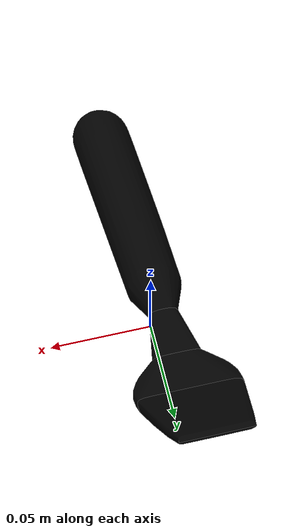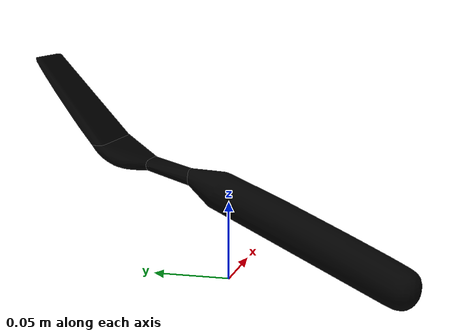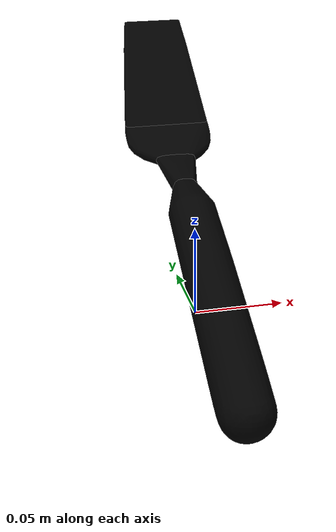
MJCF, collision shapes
<mujoco model="fork_00">
  <asset>
    <mesh name="fork00_visual_mesh" file="fork_textured.obj" scale="0.12 0.12 0.12"/>
    <mesh name="fork00_collision_mesh_0" file="fork_collision_0.obj" scale="0.12 0.12 0.12"/>
    <mesh name="fork00_collision_mesh_1" file="fork_collision_1.obj" scale="0.12 0.12 0.12"/>
    <mesh name="fork00_collision_mesh_2" file="fork_collision_2.obj" scale="0.12 0.12 0.12"/>
    <mesh name="fork00_collision_mesh_3" file="fork_collision_3.obj" scale="0.12 0.12 0.12"/>
    <texture name="tex-fork00" type="2d" file="fork_texture_map.png"/>
    <material name="fork00_material"
              texture="tex-fork00"
              rgba="1 1 1 1"
              texrepeat="1 1"
              texuniform="false"
              reflectance="0.5"/>
  </asset>

  <worldbody>
    <body>
      <body name="object">
        <geom name="g0"
              type="mesh"
              pos="0 0 0.0646578"
              quat="0.707107 0.707107 0 0"
              mesh="fork00_collision_mesh_0"
              density="300"
              friction="1 0.3 0.1"
              rgba="0 0 0 0"
              solimp="0.998 0.998 0.001"
              solref="0.001 1"
              contype="1"
              conaffinity="1"
              group="3"
              condim="4"/>
        <geom name="g1"
              type="mesh"
              pos="0 0 0.0646578"
              quat="0.707107 0.707107 0 0"
              mesh="fork00_collision_mesh_1"
              density="300"
              friction="1 0.3 0.1"
              rgba="0 0 0 0"
              solimp="0.998 0.998 0.001"
              solref="0.001 1"
              contype="1"
              conaffinity="1"
              group="3"
              condim="4"/>
        <geom name="g2"
              type="mesh"
              pos="0 0 0.0646578"
              quat="0.707107 0.707107 0 0"
              mesh="fork00_collision_mesh_2"
              density="300"
              friction="1 0.3 0.1"
              rgba="0 0 0 0"
              solimp="0.998 0.998 0.001"
              solref="0.001 1"
              contype="1"
              conaffinity="1"
              group="3"
              condim="4"/>
        <geom name="g3"
              type="mesh"
              pos="0 0 0.0646578"
              quat="0.707107 0.707107 0 0"
              mesh="fork00_collision_mesh_3"
              density="300"
              friction="1 0.3 0.1"
              rgba="0 0 0 0"
              solimp="0.998 0.998 0.001"
              solref="0.001 1"
              contype="1"
              conaffinity="1"
              group="3"
              condim="4"/>

        <geom name="g_visual"
              type="mesh"
              pos="0 0 0.0646578"
              quat="0.707107 0.707107 0 0"
              mesh="fork00_visual_mesh"
              material="fork00_material"
              contype="0"
              conaffinity="0"
              group="1"/>
      </body>

      <site name="bottom_site" rgba="0 0 0 0" size="0.005" pos="0 0 -0.01"/>
      <site name="top_site" rgba="0 0 0 0" size="0.005" pos="0 0 0.01"/>
      <site name="horizontal_radius_site" rgba="0 0 0 0" size="0.005" pos="0.08 0 0"/>
    </body>
  </worldbody>
</mujoco>
